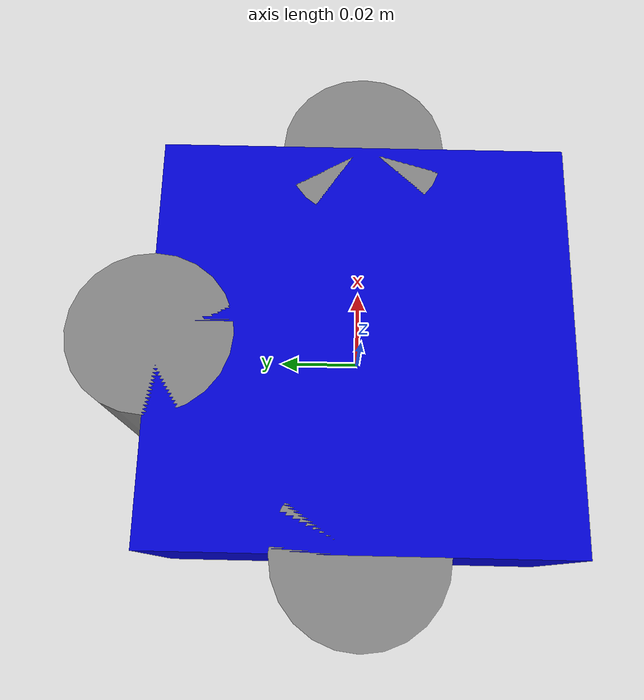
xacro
<?xml version="1.0"?>
<robot xmlns:xacro="http://www.ros.org/wiki/xacro" name="hybrid_robot">

  <!-- Define servo joint names and IDs -->
  <xacro:property name="servo_1_id" value="1" />
  <xacro:property name="servo_3_id" value="3" />
  <xacro:property name="servo_4_id" value="4" />

  <!-- Base link -->
  <link name="base_link">
    <visual>
      <geometry>
        <box size="0.1 0.1 0.05"/>
      </geometry>
      <material name="blue">
        <color rgba="0 0 0.8 1"/>
      </material>
    </visual>
  </link>

  <!-- Servo 1 link and joint -->
  <link name="servo_link_1">
    <visual>
      <geometry>
        <cylinder radius="0.02" length="0.05"/>
      </geometry>
      <material name="gray">
        <color rgba="0.5 0.5 0.5 1"/>
      </material>
    </visual>
  </link>

  <joint name="servo_joint_1" type="revolute">
    <parent link="base_link"/>
    <child link="servo_link_1"/>
    <origin xyz="0.05 0 0" rpy="0 0 0"/>
    <axis xyz="0 0 1"/>
    <limit lower="-3.14" upper="3.14" effort="10" velocity="5"/>
  </joint>

  <!-- Servo 3 link and joint -->
  <link name="servo_link_3">
    <visual>
      <geometry>
        <cylinder radius="0.02" length="0.05"/>
      </geometry>
      <material name="gray">
        <color rgba="0.5 0.5 0.5 1"/>
      </material>
    </visual>
  </link>

  <joint name="servo_joint_3" type="revolute">
    <parent link="base_link"/>
    <child link="servo_link_3"/>
    <origin xyz="0 0.05 0" rpy="0 0 0"/>
    <axis xyz="0 0 1"/>
    <limit lower="-3.14" upper="3.14" effort="10" velocity="5"/>
  </joint>

  <!-- Servo 4 link and joint -->
  <link name="servo_link_4">
    <visual>
      <geometry>
        <cylinder radius="0.02" length="0.05"/>
      </geometry>
      <material name="gray">
        <color rgba="0.5 0.5 0.5 1"/>
      </material>
    </visual>
  </link>

  <joint name="servo_joint_4" type="revolute">
    <parent link="base_link"/>
    <child link="servo_link_4"/>
    <origin xyz="-0.05 0 0" rpy="0 0 0"/>
    <axis xyz="0 0 1"/>
    <limit lower="-3.14" upper="3.14" effort="10" velocity="5"/>
  </joint>

  <!-- ROS 2 Control hardware interface -->
  <ros2_control name="ST3215HardwareSystem" type="system">
    <hardware>
      <plugin>hybrid_robot_hardware/ST3215HardwareInterface</plugin>
      <param name="serial_port">/dev/ttyUSB0</param>
      <param name="servo_ids">1,3,4</param>
    </hardware>

    <joint name="servo_joint_1">
      <command_interface name="position">
        <param name="min">-3.14</param>
        <param name="max">3.14</param>
      </command_interface>
      <command_interface name="velocity">
        <param name="min">-5.0</param>
        <param name="max">5.0</param>
      </command_interface>
      <state_interface name="position"/>
      <state_interface name="velocity"/>
      <state_interface name="effort"/>
    </joint>

    <joint name="servo_joint_3">
      <command_interface name="position">
        <param name="min">-3.14</param>
        <param name="max">3.14</param>
      </command_interface>
      <state_interface name="position"/>
      <state_interface name="velocity"/>
      <state_interface name="effort"/>
    </joint>

    <joint name="servo_joint_4">
      <command_interface name="position">
        <param name="min">-3.14</param>
        <param name="max">3.14</param>
      </command_interface>
      <state_interface name="position"/>
      <state_interface name="velocity"/>
      <state_interface name="effort"/>
    </joint>
  </ros2_control>

</robot>
